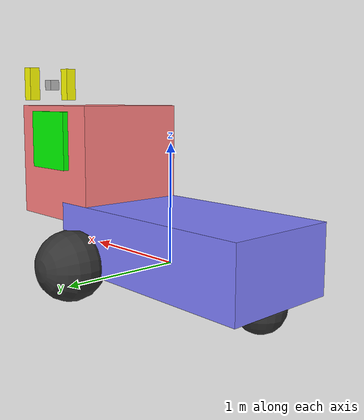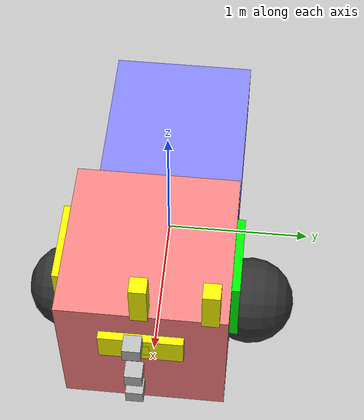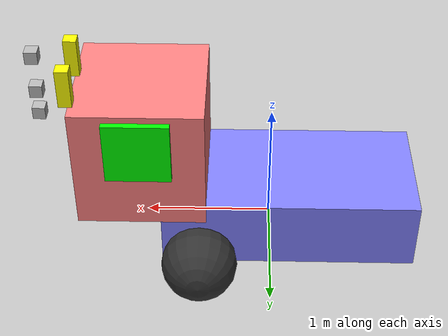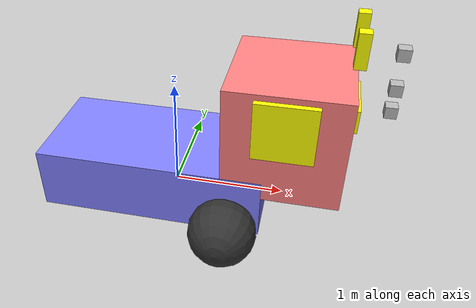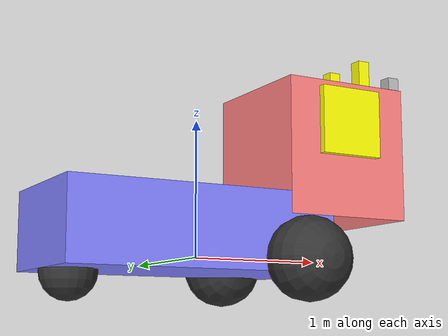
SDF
<?xml version="1.0" ?>
<sdf version="1.8">
    <model name='diff_drive'>

      <link name='chassis'>
        <pose>-0.151427 0 0.175 0 0 0</pose>
        <inertial>
          <mass>1.14395</mass>
          <inertia>
            <ixx>0.126164</ixx>
            <ixy>0</ixy>
            <ixz>0</ixz>
            <iyy>0.416519</iyy>
            <iyz>0</iyz>
            <izz>0.481014</izz>
          </inertia>
        </inertial>
        <visual name='visual_chassis'>
          <geometry>
            <box>
              <size>2.01142 1 0.568726</size>
            </box>
          </geometry>
          <material>
            <ambient>0.5 0.5 1.0 1</ambient>
            <diffuse>0.5 0.5 1.0 1</diffuse>
            <specular>0.0 0.0 1.0 1</specular>
          </material>
        </visual>
        <collision name='collision_chassis'>
          <geometry>
            <box>
              <size>2.01142 1 0.568726</size>
            </box>
          </geometry>
        </collision>
      </link>

      <link name='left_wheel'>
        <pose>0.554283 0.625029 -0.025 -1.5707 0 0</pose>
        <inertial>
          <mass>2</mass>
          <inertia>
            <ixx>0.145833</ixx>
            <ixy>0</ixy>
            <ixz>0</ixz>
            <iyy>0.145833</iyy>
            <iyz>0</iyz>
            <izz>0.125</izz>
          </inertia>
        </inertial>
        <visual name='visual_left_wheel'>
          <geometry>
            <sphere>
              <radius>0.3</radius>
            </sphere>
          </geometry>
          <material>
            <ambient>0.2 0.2 0.2 1</ambient>
            <diffuse>0.2 0.2 0.2 1</diffuse>
            <specular>0.2 0.2 0.2 1</specular>
          </material>
        </visual>
        <collision name='collision_left_wheel'>
          <geometry>
            <sphere>
              <radius>0.3</radius>
            </sphere>
          </geometry>
        </collision>
      </link>

      <link name='right_wheel'>
        <pose>0.554282 -0.625029 -0.025 -1.5707 0 0</pose>
        <inertial>
          <mass>2</mass>
          <inertia>
            <ixx>0.145833</ixx>
            <ixy>0</ixy>
            <ixz>0</ixz>
            <iyy>0.145833</iyy>
            <iyz>0</iyz>
            <izz>0.125</izz>
          </inertia>
        </inertial>
        <visual name='visual_right_wheel'>
          <geometry>
            <sphere>
              <radius>0.3</radius>
            </sphere>
          </geometry>
          <material>
            <ambient>0.2 0.2 0.2 1</ambient>
            <diffuse>0.2 0.2 0.2 1</diffuse>
            <specular>0.2 0.2 0.2 1</specular>
          </material>
        </visual>
        <collision name='collision_right_wheel'>
          <geometry>
            <sphere>
              <radius>0.3</radius>
            </sphere>
          </geometry>
        </collision>
      </link>

      <link name='caster'>
        <pose>-0.957138 0 -0.125 0 0 0</pose>
        <inertial>
          <mass>1</mass>
          <inertia>
            <ixx>0.1</ixx>
            <ixy>0</ixy>
            <ixz>0</ixz>
            <iyy>0.1</iyy>
            <iyz>0</iyz>
            <izz>0.1</izz>
          </inertia>
        </inertial>
        <visual name='visual_caster'>
          <geometry>
            <sphere>
              <radius>0.2</radius>
            </sphere>
          </geometry>
          <material>
            <ambient>0.2 0.2 0.2 1</ambient>
            <diffuse>0.2 0.2 0.2 1</diffuse>
            <specular>0.2 0.2 0.2 1</specular>
          </material>
        </visual>
        <collision name='collision_caster'>
          <geometry>
            <sphere>
              <radius>0.2</radius>
            </sphere>
          </geometry>
        </collision>
      </link>

      <!-- ГОЛОВА -->
      <link name='golova'>
        <pose>1 0 0.8 0 0 0</pose>
        <inertial>
          <mass>0.5</mass>
          <inertia>
            <ixx>0.01</ixx>
            <ixy>0</ixy>
            <ixz>0</ixz>
            <iyy>0.01</iyy>
            <iyz>0</iyz>
            <izz>0.01</izz>
          </inertia>
        </inertial>
        <visual name='visual_golova'>
          <geometry>
            <box>
              <size>1 1 1</size>
            </box>
          </geometry>
          <material>
            <ambient>1.0 0.5 0.5 1</ambient>
            <diffuse>1.0 0.5 0.5 1</diffuse>
            <specular>0.5 0.2 0.2 1</specular>
          </material>
        </visual>
        <collision name='collision_golova'>
          <geometry>
            <box>
              <size>1 1 1</size>
            </box>
          </geometry>
        </collision>
      </link>

      <!-- ДЕКОРАТИВНЫЕ ЭЛЕМЕНТЫ -->
      <link name='yxo1'>
        <pose>1 0.5 1 0 0 0</pose>
        <inertial>
          <mass>0.1</mass>
          <inertia>
            <ixx>0.001</ixx>
            <ixy>0</ixy>
            <ixz>0</ixz>
            <iyy>0.001</iyy>
            <iyz>0</iyz>
            <izz>0.001</izz>
          </inertia>
        </inertial>
        <visual name='visual_yxo1'>
          <geometry>
            <box>
              <size>0.5 0.1 0.5</size>
            </box>
          </geometry>
          <material>
            <ambient>0.0 1.0 0.0 1</ambient>
            <diffuse>0.0 1.0 0.0 1</diffuse>
            <specular>0.0 0.5 0.0 1</specular>
          </material>
        </visual>
        <collision name='collision_yxo1'>
          <geometry>
            <box>
              <size>0.5 0.1 0.5</size>
            </box>
          </geometry>
        </collision>
      </link>

      <link name='yxo2'>
        <pose>1 -0.5 1 0 0 0</pose>
        <inertial>
          <mass>0.1</mass>
          <inertia>
            <ixx>0.001</ixx>
            <ixy>0</ixy>
            <ixz>0</ixz>
            <iyy>0.001</iyy>
            <iyz>0</iyz>
            <izz>0.001</izz>
          </inertia>
        </inertial>
        <visual name='visual_yxo2'>
          <geometry>
            <box>
              <size>0.5 0.1 0.5</size>
            </box>
          </geometry>
          <material>
            <ambient>1.0 1.0 0.0 1</ambient>
            <diffuse>1.0 1.0 0.0 1</diffuse>
            <specular>0.5 0.5 0.0 1</specular>
          </material>
        </visual>
        <collision name='collision_yxo2'>
          <geometry>
            <box>
              <size>0.5 0.1 0.5</size>
            </box>
          </geometry>
        </collision>
      </link>

      <link name='nos'>
        <pose>1.4 0 1 0 0 0</pose>
        <inertial>
          <mass>0.1</mass>
          <inertia>
            <ixx>0.001</ixx>
            <ixy>0</ixy>
            <ixz>0</ixz>
            <iyy>0.001</iyy>
            <iyz>0</iyz>
            <izz>0.001</izz>
          </inertia>
        </inertial>
        <visual name='visual_nos'>
          <geometry>
            <box>
              <size>0.3 0.5 0.2</size>
            </box>
          </geometry>
          <material>
            <ambient>1.0 1.0 0.0 1</ambient>
            <diffuse>1.0 1.0 0.0 1</diffuse>
            <specular>0.5 0.5 0.0 1</specular>
          </material>
        </visual>
        <collision name='collision_nos'>
          <geometry>
            <box>
              <size>0.3 0.5 0.2</size>
            </box>
          </geometry>
        </collision>
      </link>

      <link name='nos2'>
        <pose>1.5 0 1 0 0 0</pose>
        <inertial>
          <mass>0.1</mass>
          <inertia>
            <ixx>0.001</ixx>
            <ixy>0</ixy>
            <ixz>0</ixz>
            <iyy>0.001</iyy>
            <iyz>0</iyz>
            <izz>0.001</izz>
          </inertia>
        </inertial>
        <visual name='visual_nos2'>
          <geometry>
            <box>
              <size>0.1 0.1 0.1</size>
            </box>
          </geometry>
          <material>
            <ambient>1.0 1.0 0.0 1</ambient>
            <diffuse>1.0 1.0 0.0 1</diffuse>
            <specular>0.5 0.5 0.0 1</specular>
          </material>
        </visual>
        <collision name='collision_nos2'>
          <geometry>
            <box>
              <size>0.1 0.1 0.1</size>
            </box>
          </geometry>
        </collision>
      </link>

      <link name='glaza1'>
        <pose>1.5 0.4 1.5 0 0 0</pose>
        <inertial>
          <mass>0.1</mass>
          <inertia>
            <ixx>0.001</ixx>
            <ixy>0</ixy>
            <ixz>0</ixz>
            <iyy>0.001</iyy>
            <iyz>0</iyz>
            <izz>0.001</izz>
          </inertia>
        </inertial>
        <visual name='visual_glaza1'>
          <geometry>
            <box>
              <size>0.1 0.1 0.3</size>
            </box>
          </geometry>
          <material>
            <ambient>1.0 1.0 0.0 1</ambient>
            <diffuse>1.0 1.0 0.0 1</diffuse>
            <specular>0.5 0.5 0.0 1</specular>
          </material>
        </visual>
        <collision name='collision_glaza1'>
          <geometry>
            <box>
              <size>0.1 0.1 0.3</size>
            </box>
          </geometry>
        </collision>
      </link>

      <link name='glaza2'>
        <pose>1.5 0 1.5 0 0 0</pose>
        <inertial>
          <mass>0.1</mass>
          <inertia>
            <ixx>0.001</ixx>
            <ixy>0</ixy>
            <ixz>0</ixz>
            <iyy>0.001</iyy>
            <iyz>0</iyz>
            <izz>0.001</izz>
          </inertia>
        </inertial>
        <visual name='visual_glaza2'>
          <geometry>
            <box>
              <size>0.1 0.1 0.3</size>
            </box>
          </geometry>
          <material>
            <ambient>1.0 1.0 0.0 1</ambient>
            <diffuse>1.0 1.0 0.0 1</diffuse>
            <specular>0.5 0.5 0.0 1</specular>
          </material>
        </visual>
        <collision name='collision_glaza2'>
          <geometry>
            <box>
              <size>0.1 0.1 0.3</size>
            </box>
          </geometry>
        </collision>
      </link>

      <link name="lidar_link">
        <pose>1.8 0 1 0 0 0</pose>
        <inertial>
          <mass>0.1</mass>
          <inertia>
            <ixx>0.000166667</ixx>
            <iyy>0.000166667</iyy>
            <izz>0.000166667</izz>
          </inertia>
        </inertial>
        <collision name="collision">
          <geometry>
            <box>
              <size>0.1 0.1 0.1</size>
            </box>
          </geometry>
        </collision>
        <visual name="visual">
          <geometry>
            <box>
              <size>0.1 0.1 0.1</size>
            </box>
          </geometry>
        </visual>

        <sensor name='lidar' type='gpu_lidar'>
          <pose>0 0 0 0 0 0</pose>
          <topic>scan</topic>
          <frame>lidar_link</frame>

          <ros>
            <!-- Явно указываем frame_id -->
            <frame_id>diff_drive/lidar_link</frame_id>
          </ros>

          <update_rate>10</update_rate>

          <lidar>
            <scan>
              <horizontal>
                <samples>640</samples>
                <resolution>1</resolution>
                <min_angle>-1.396263</min_angle>
                <max_angle>1.396263</max_angle>
              </horizontal>
              <vertical>
                <samples>1</samples>
                <resolution>1</resolution>
                <min_angle>0.0</min_angle>
                <max_angle>0.0</max_angle>
              </vertical>
            </scan>
            <range>
              <min>0.08</min>
              <max>10.0</max>
              <resolution>0.01</resolution>
            </range>
          </lidar>
          <visualize>true</visualize>
        </sensor>
      </link>

      <link name="depth_camera_link">
        <pose>1.8 0 1.2 0 0 0</pose>
        <inertial>
          <mass>0.1</mass>
          <inertia>
            <ixx>0.000166667</ixx>
            <iyy>0.000166667</iyy>
            <izz>0.000166667</izz>
          </inertia>
        </inertial>
        <collision name="collision">
          <geometry>
            <box>
              <size>0.1 0.1 0.1</size>
            </box>
          </geometry>
        </collision>
        <visual name="visual">
          <geometry>
            <box>
              <size>0.1 0.1 0.1</size>
            </box>
          </geometry>
        </visual>

        <sensor name="epth_camera" type="depth_camera">
            <pose>0 0.0175 0.0125 0 0 0</pose>
            <update_rate>6</update_rate>
            <always_on>0</always_on>
            <camera>
              <horizontal_fov>1.51843645</horizontal_fov>
              <image>
                <width>848</width>
                <height>480</height>
                <format>R_FLOAT32</format>
              </image>
              <clip>
                <near>0.1</near>
                <far>10</far>
              </clip>
              <lens>
                <intrinsics>
                  <fx>421.61578369140625</fx>
                  <fy>421.61578369140625</fy>
                  <cx>422.2854309082031</cx>
                  <cy>236.57237243652344</cy>
                  <s>0</s>
                </intrinsics>
              </lens>
            </camera>
        </sensor>
      </link>

      <link name="IMU_link">
        <pose>1.8 0 1.5 0 0 0</pose>
        <inertial>
          <mass>0.1</mass>
          <inertia>
            <ixx>0.000166667</ixx>
            <iyy>0.000166667</iyy>
            <izz>0.000166667</izz>
          </inertia>
        </inertial>
        <collision name="collision">
          <geometry>
            <box>
              <size>0.1 0.1 0.1</size>
            </box>
          </geometry>
        </collision>
        <visual name="visual">
          <geometry>
            <box>
              <size>0.1 0.1 0.1</size>
            </box>
          </geometry>
        </visual>

        <sensor name="imu_sensor" type="imu">
            <always_on>1</always_on>
            <update_rate>1</update_rate>
            <visualize>true</visualize>
            <topic>imu</topic>
            <gz_frame_id>diff_drive/IMU_link</gz_frame_id>
        </sensor>

      </link>

      <!-- СУСТАВЫ -->

      <joint name='imu_joint' type='fixed'>
        <parent>chassis</parent>
        <child>IMU_link</child>
      </joint>

      <joint name='camera_joint' type='fixed'>
        <parent>chassis</parent>
        <child>depth_camera_link</child>
      </joint>

      <joint name='lidar_joint' type='fixed'>
        <parent>chassis</parent>
        <child>lidar_link</child>
      </joint>

      <joint name='left_wheel_joint' type='revolute'>
        <parent>chassis</parent>
        <child>left_wheel</child>
        <axis>
          <xyz>0 0 1</xyz>
          <limit>
            <lower>-1e10</lower>
            <upper>1e10</upper>
          </limit>
        </axis>
      </joint>

      <joint name='right_wheel_joint' type='revolute'>
        <parent>chassis</parent>
        <child>right_wheel</child>
        <axis>
          <xyz>0 0 1</xyz>
          <limit>
            <lower>-1e10</lower>
            <upper>1e10</upper>
          </limit>
        </axis>
      </joint>

      <joint name='caster_wheel' type='ball'>
        <parent>chassis</parent>
        <child>caster</child>
      </joint>

      <joint name='golova_joint' type='fixed'>
        <parent>chassis</parent>
        <child>golova</child>
      </joint>

      <joint name='yxo1_joint' type='fixed'>
        <parent>chassis</parent>
        <child>yxo1</child>
      </joint>

      <joint name='nos_joint' type='fixed'>
        <parent>chassis</parent>
        <child>nos</child>
      </joint>

      <joint name='nos2_joint' type='fixed'>
        <parent>chassis</parent>
        <child>nos2</child>
      </joint>

      <joint name='yxo2_joint' type='fixed'>
        <parent>chassis</parent>
        <child>yxo2</child>
      </joint>

      <joint name='glaza1_joint' type='fixed'>
        <parent>golova</parent>
        <child>glaza1</child>
      </joint>

      <joint name='glaza2_joint' type='fixed'>
        <parent>golova</parent>
        <child>glaza2</child>
      </joint>

      <plugin
        filename="ignition-gazebo-diff-drive-system"
        name="ignition::gazebo::systems::DiffDrive">
        <left_joint>left_wheel_joint</left_joint>
        <right_joint>right_wheel_joint</right_joint>
        <wheel_separation>1.25</wheel_separation>
        <wheel_radius>0.3</wheel_radius>
        <odom_publish_frequency>1</odom_publish_frequency>
        <max_linear_acceleration>1</max_linear_acceleration>
        <min_linear_acceleration>-1</min_linear_acceleration>
        <max_angular_acceleration>2</max_angular_acceleration>
        <min_angular_acceleration>-2</min_angular_acceleration>
        <max_linear_velocity>0.5</max_linear_velocity>
        <min_linear_velocity>-0.5</min_linear_velocity>
        <max_angular_velocity>1</max_angular_velocity>
        <min_angular_velocity>-1</min_angular_velocity>
      </plugin>
    </model>
</sdf>
